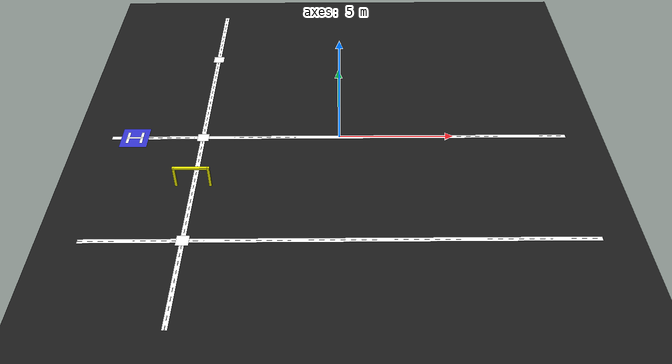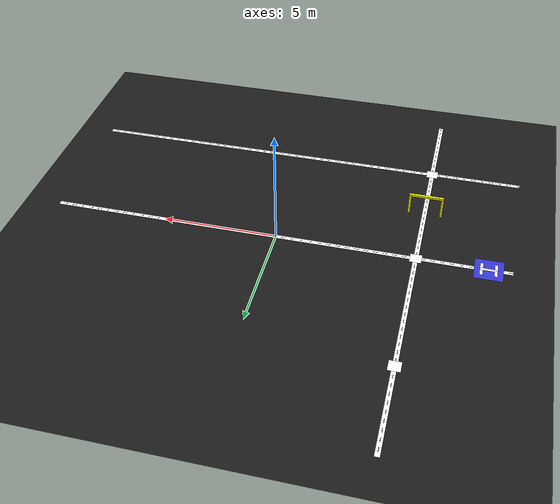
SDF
<sdf version="1.7">
 <world name="fira_arena">
  <model name="ground_plane">
   <static>true</static>
   <link name="link">
    <collision name="collision">
     <geometry><plane><normal>0 0 1</normal><size>30 30</size></plane></geometry>
    </collision>
    <visual name="visual">
     <geometry><plane><normal>0 0 1</normal><size>30 30</size></plane></geometry>
     <material>
      <ambient>0.1 0.1 0.1 1</ambient>
      <diffuse>0.1 0.1 0.1 1</diffuse>
      <specular>0.1 0.1 0.1 1</specular>
     </material>
    </visual>
   </link>
  </model>
  <model name="street_h_bottom">
   <static>true</static>
   <pose>0 -6 0.001 0 0 0</pose>
   <link name="link">
    <visual name="road">
     <geometry><box><size>20.0 0.2 0.002</size></box></geometry>
     <material><ambient>1 1 1 1</ambient><diffuse>1 1 1 1</diffuse></material>
    </visual>
    <visual name="l0">
     <pose>-9.90 0 0.001 0 0 0</pose>
     <geometry><box><size>0.2 0.02 0.001</size></box></geometry>
     <material><ambient>0 0 0 1</ambient><diffuse>0 0 0 1</diffuse></material>
    </visual>
    <visual name="l1">
     <pose>-9.50 0 0.001 0 0 0</pose>
     <geometry><box><size>0.2 0.02 0.001</size></box></geometry>
     <material><ambient>0 0 0 1</ambient><diffuse>0 0 0 1</diffuse></material>
    </visual>
    <visual name="l2">
     <pose>-9.10 0 0.001 0 0 0</pose>
     <geometry><box><size>0.2 0.02 0.001</size></box></geometry>
     <material><ambient>0 0 0 1</ambient><diffuse>0 0 0 1</diffuse></material>
    </visual>
    <visual name="l3">
     <pose>-8.70 0 0.001 0 0 0</pose>
     <geometry><box><size>0.2 0.02 0.001</size></box></geometry>
     <material><ambient>0 0 0 1</ambient><diffuse>0 0 0 1</diffuse></material>
    </visual>
    <visual name="l4">
     <pose>-8.30 0 0.001 0 0 0</pose>
     <geometry><box><size>0.2 0.02 0.001</size></box></geometry>
     <material><ambient>0 0 0 1</ambient><diffuse>0 0 0 1</diffuse></material>
    </visual>
    <visual name="l5">
     <pose>-7.90 0 0.001 0 0 0</pose>
     <geometry><box><size>0.2 0.02 0.001</size></box></geometry>
     <material><ambient>0 0 0 1</ambient><diffuse>0 0 0 1</diffuse></material>
    </visual>
    <visual name="l6">
     <pose>-7.50 0 0.001 0 0 0</pose>
     <geometry><box><size>0.2 0.02 0.001</size></box></geometry>
     <material><ambient>0 0 0 1</ambient><diffuse>0 0 0 1</diffuse></material>
    </visual>
    <visual name="l7">
     <pose>-7.10 0 0.001 0 0 0</pose>
     <geometry><box><size>0.2 0.02 0.001</size></box></geometry>
     <material><ambient>0 0 0 1</ambient><diffuse>0 0 0 1</diffuse></material>
    </visual>
    <visual name="l8">
     <pose>-6.70 0 0.001 0 0 0</pose>
     <geometry><box><size>0.2 0.02 0.001</size></box></geometry>
     <material><ambient>0 0 0 1</ambient><diffuse>0 0 0 1</diffuse></material>
    </visual>
    <visual name="l9">
     <pose>-6.30 0 0.001 0 0 0</pose>
     <geometry><box><size>0.2 0.02 0.001</size></box></geometry>
     <material><ambient>0 0 0 1</ambient><diffuse>0 0 0 1</diffuse></material>
    </visual>
    <visual name="l10">
     <pose>-5.90 0 0.001 0 0 0</pose>
     <geometry><box><size>0.2 0.02 0.001</size></box></geometry>
     <material><ambient>0 0 0 1</ambient><diffuse>0 0 0 1</diffuse></material>
    </visual>
    <visual name="l11">
     <pose>-5.50 0 0.001 0 0 0</pose>
     <geometry><box><size>0.2 0.02 0.001</size></box></geometry>
     <material><ambient>0 0 0 1</ambient><diffuse>0 0 0 1</diffuse></material>
    </visual>
    <visual name="l12">
     <pose>-5.10 0 0.001 0 0 0</pose>
     <geometry><box><size>0.2 0.02 0.001</size></box></geometry>
     <material><ambient>0 0 0 1</ambient><diffuse>0 0 0 1</diffuse></material>
    </visual>
    <visual name="l13">
     <pose>-4.70 0 0.001 0 0 0</pose>
     <geometry><box><size>0.2 0.02 0.001</size></box></geometry>
     <material><ambient>0 0 0 1</ambient><diffuse>0 0 0 1</diffuse></material>
    </visual>
    <visual name="l14">
     <pose>-4.30 0 0.001 0 0 0</pose>
     <geometry><box><size>0.2 0.02 0.001</size></box></geometry>
     <material><ambient>0 0 0 1</ambient><diffuse>0 0 0 1</diffuse></material>
    </visual>
    <visual name="l15">
     <pose>-3.90 0 0.001 0 0 0</pose>
     <geometry><box><size>0.2 0.02 0.001</size></box></geometry>
     <material><ambient>0 0 0 1</ambient><diffuse>0 0 0 1</diffuse></material>
    </visual>
    <visual name="l16">
     <pose>-3.50 0 0.001 0 0 0</pose>
     <geometry><box><size>0.2 0.02 0.001</size></box></geometry>
     <material><ambient>0 0 0 1</ambient><diffuse>0 0 0 1</diffuse></material>
    </visual>
    <visual name="l17">
     <pose>-3.10 0 0.001 0 0 0</pose>
     <geometry><box><size>0.2 0.02 0.001</size></box></geometry>
     <material><ambient>0 0 0 1</ambient><diffuse>0 0 0 1</diffuse></material>
    </visual>
    <visual name="l18">
     <pose>-2.70 0 0.001 0 0 0</pose>
     <geometry><box><size>0.2 0.02 0.001</size></box></geometry>
     <material><ambient>0 0 0 1</ambient><diffuse>0 0 0 1</diffuse></material>
    </visual>
    <visual name="l19">
     <pose>-2.30 0 0.001 0 0 0</pose>
     <geometry><box><size>0.2 0.02 0.001</size></box></geometry>
     <material><ambient>0 0 0 1</ambient><diffuse>0 0 0 1</diffuse></material>
    </visual>
    <visual name="l20">
     <pose>-1.90 0 0.001 0 0 0</pose>
     <geometry><box><size>0.2 0.02 0.001</size></box></geometry>
     <material><ambient>0 0 0 1</ambient><diffuse>0 0 0 1</diffuse></material>
    </visual>
    <visual name="l21">
     <pose>-1.50 0 0.001 0 0 0</pose>
     <geometry><box><size>0.2 0.02 0.001</size></box></geometry>
     <material><ambient>0 0 0 1</ambient><diffuse>0 0 0 1</diffuse></material>
    </visual>
    <visual name="l22">
     <pose>-1.10 0 0.001 0 0 0</pose>
     <geometry><box><size>0.2 0.02 0.001</size></box></geometry>
     <material><ambient>0 0 0 1</ambient><diffuse>0 0 0 1</diffuse></material>
    </visual>
    <visual name="l23">
     <pose>-0.70 0 0.001 0 0 0</pose>
     <geometry><box><size>0.2 0.02 0.001</size></box></geometry>
     <material><ambient>0 0 0 1</ambient><diffuse>0 0 0 1</diffuse></material>
    </visual>
    <visual name="l24">
     <pose>-0.30 0 0.001 0 0 0</pose>
     <geometry><box><size>0.2 0.02 0.001</size></box></geometry>
     <material><ambient>0 0 0 1</ambient><diffuse>0 0 0 1</diffuse></material>
    </visual>
    <visual name="l25">
     <pose>0.10 0 0.001 0 0 0</pose>
     <geometry><box><size>0.2 0.02 0.001</size></box></geometry>
     <material><ambient>0 0 0 1</ambient><diffuse>0 0 0 1</diffuse></material>
    </visual>
    <visual name="l26">
     <pose>0.50 0 0.001 0 0 0</pose>
     <geometry><box><size>0.2 0.02 0.001</size></box></geometry>
     <material><ambient>0 0 0 1</ambient><diffuse>0 0 0 1</diffuse></material>
    </visual>
    <visual name="l27">
     <pose>0.90 0 0.001 0 0 0</pose>
     <geometry><box><size>0.2 0.02 0.001</size></box></geometry>
     <material><ambient>0 0 0 1</ambient><diffuse>0 0 0 1</diffuse></material>
    </visual>
    <visual name="l28">
     <pose>1.30 0 0.001 0 0 0</pose>
     <geometry><box><size>0.2 0.02 0.001</size></box></geometry>
     <material><ambient>0 0 0 1</ambient><diffuse>0 0 0 1</diffuse></material>
    </visual>
    <visual name="l29">
     <pose>1.70 0 0.001 0 0 0</pose>
     <geometry><box><size>0.2 0.02 0.001</size></box></geometry>
     <material><ambient>0 0 0 1</ambient><diffuse>0 0 0 1</diffuse></material>
    </visual>
    <visual name="l30">
     <pose>2.10 0 0.001 0 0 0</pose>
     <geometry><box><size>0.2 0.02 0.001</size></box></geometry>
     <material><ambient>0 0 0 1</ambient><diffuse>0 0 0 1</diffuse></material>
    </visual>
    <visual name="l31">
     <pose>2.50 0 0.001 0 0 0</pose>
     <geometry><box><size>0.2 0.02 0.001</size></box></geometry>
     <material><ambient>0 0 0 1</ambient><diffuse>0 0 0 1</diffuse></material>
    </visual>
    <visual name="l32">
     <pose>2.90 0 0.001 0 0 0</pose>
     <geometry><box><size>0.2 0.02 0.001</size></box></geometry>
     <material><ambient>0 0 0 1</ambient><diffuse>0 0 0 1</diffuse></material>
    </visual>
    <visual name="l33">
     <pose>3.30 0 0.001 0 0 0</pose>
     <geometry><box><size>0.2 0.02 0.001</size></box></geometry>
     <material><ambient>0 0 0 1</ambient><diffuse>0 0 0 1</diffuse></material>
    </visual>
    <visual name="l34">
     <pose>3.70 0 0.001 0 0 0</pose>
     <geometry><box><size>0.2 0.02 0.001</size></box></geometry>
     <material><ambient>0 0 0 1</ambient><diffuse>0 0 0 1</diffuse></material>
    </visual>
    <visual name="l35">
     <pose>4.10 0 0.001 0 0 0</pose>
     <geometry><box><size>0.2 0.02 0.001</size></box></geometry>
     <material><ambient>0 0 0 1</ambient><diffuse>0 0 0 1</diffuse></material>
    </visual>
    <visual name="l36">
     <pose>4.50 0 0.001 0 0 0</pose>
     <geometry><box><size>0.2 0.02 0.001</size></box></geometry>
     <material><ambient>0 0 0 1</ambient><diffuse>0 0 0 1</diffuse></material>
    </visual>
    <visual name="l37">
     <pose>4.90 0 0.001 0 0 0</pose>
     <geometry><box><size>0.2 0.02 0.001</size></box></geometry>
     <material><ambient>0 0 0 1</ambient><diffuse>0 0 0 1</diffuse></material>
    </visual>
    <visual name="l38">
     <pose>5.30 0 0.001 0 0 0</pose>
     <geometry><box><size>0.2 0.02 0.001</size></box></geometry>
     <material><ambient>0 0 0 1</ambient><diffuse>0 0 0 1</diffuse></material>
    </visual>
    <visual name="l39">
     <pose>5.70 0 0.001 0 0 0</pose>
     <geometry><box><size>0.2 0.02 0.001</size></box></geometry>
     <material><ambient>0 0 0 1</ambient><diffuse>0 0 0 1</diffuse></material>
    </visual>
    <visual name="l40">
     <pose>6.10 0 0.001 0 0 0</pose>
     <geometry><box><size>0.2 0.02 0.001</size></box></geometry>
     <material><ambient>0 0 0 1</ambient><diffuse>0 0 0 1</diffuse></material>
    </visual>
    <visual name="l41">
     <pose>6.50 0 0.001 0 0 0</pose>
     <geometry><box><size>0.2 0.02 0.001</size></box></geometry>
     <material><ambient>0 0 0 1</ambient><diffuse>0 0 0 1</diffuse></material>
    </visual>
    <visual name="l42">
     <pose>6.90 0 0.001 0 0 0</pose>
     <geometry><box><size>0.2 0.02 0.001</size></box></geometry>
     <material><ambient>0 0 0 1</ambient><diffuse>0 0 0 1</diffuse></material>
    </visual>
    <visual name="l43">
     <pose>7.30 0 0.001 0 0 0</pose>
     <geometry><box><size>0.2 0.02 0.001</size></box></geometry>
     <material><ambient>0 0 0 1</ambient><diffuse>0 0 0 1</diffuse></material>
    </visual>
    <visual name="l44">
     <pose>7.70 0 0.001 0 0 0</pose>
     <geometry><box><size>0.2 0.02 0.001</size></box></geometry>
     <material><ambient>0 0 0 1</ambient><diffuse>0 0 0 1</diffuse></material>
    </visual>
    <visual name="l45">
     <pose>8.10 0 0.001 0 0 0</pose>
     <geometry><box><size>0.2 0.02 0.001</size></box></geometry>
     <material><ambient>0 0 0 1</ambient><diffuse>0 0 0 1</diffuse></material>
    </visual>
    <visual name="l46">
     <pose>8.50 0 0.001 0 0 0</pose>
     <geometry><box><size>0.2 0.02 0.001</size></box></geometry>
     <material><ambient>0 0 0 1</ambient><diffuse>0 0 0 1</diffuse></material>
    </visual>
    <visual name="l47">
     <pose>8.90 0 0.001 0 0 0</pose>
     <geometry><box><size>0.2 0.02 0.001</size></box></geometry>
     <material><ambient>0 0 0 1</ambient><diffuse>0 0 0 1</diffuse></material>
    </visual>
    <visual name="l48">
     <pose>9.30 0 0.001 0 0 0</pose>
     <geometry><box><size>0.2 0.02 0.001</size></box></geometry>
     <material><ambient>0 0 0 1</ambient><diffuse>0 0 0 1</diffuse></material>
    </visual>
    <visual name="l49">
     <pose>9.70 0 0.001 0 0 0</pose>
     <geometry><box><size>0.2 0.02 0.001</size></box></geometry>
     <material><ambient>0 0 0 1</ambient><diffuse>0 0 0 1</diffuse></material>
    </visual>
   </link>
  </model>
  <model name="street_h_middle">
   <static>true</static>
   <pose>0 0 0.001 0 0 0</pose>
   <link name="link">
    <visual name="road">
     <geometry><box><size>20.0 0.2 0.002</size></box></geometry>
     <material><ambient>1 1 1 1</ambient><diffuse>1 1 1 1</diffuse></material>
    </visual>
    <visual name="l0">
     <pose>-9.90 0 0.001 0 0 0</pose>
     <geometry><box><size>0.2 0.02 0.001</size></box></geometry>
     <material><ambient>0 0 0 1</ambient><diffuse>0 0 0 1</diffuse></material>
    </visual>
    <visual name="l1">
     <pose>-9.50 0 0.001 0 0 0</pose>
     <geometry><box><size>0.2 0.02 0.001</size></box></geometry>
     <material><ambient>0 0 0 1</ambient><diffuse>0 0 0 1</diffuse></material>
    </visual>
    <visual name="l2">
     <pose>-9.10 0 0.001 0 0 0</pose>
     <geometry><box><size>0.2 0.02 0.001</size></box></geometry>
     <material><ambient>0 0 0 1</ambient><diffuse>0 0 0 1</diffuse></material>
    </visual>
    <visual name="l3">
     <pose>-8.70 0 0.001 0 0 0</pose>
     <geometry><box><size>0.2 0.02 0.001</size></box></geometry>
     <material><ambient>0 0 0 1</ambient><diffuse>0 0 0 1</diffuse></material>
    </visual>
    <visual name="l4">
     <pose>-8.30 0 0.001 0 0 0</pose>
     <geometry><box><size>0.2 0.02 0.001</size></box></geometry>
     <material><ambient>0 0 0 1</ambient><diffuse>0 0 0 1</diffuse></material>
    </visual>
    <visual name="l5">
     <pose>-7.90 0 0.001 0 0 0</pose>
     <geometry><box><size>0.2 0.02 0.001</size></box></geometry>
     <material><ambient>0 0 0 1</ambient><diffuse>0 0 0 1</diffuse></material>
    </visual>
    <visual name="l6">
     <pose>-7.50 0 0.001 0 0 0</pose>
     <geometry><box><size>0.2 0.02 0.001</size></box></geometry>
     <material><ambient>0 0 0 1</ambient><diffuse>0 0 0 1</diffuse></material>
    </visual>
    <visual name="l7">
     <pose>-7.10 0 0.001 0 0 0</pose>
     <geometry><box><size>0.2 0.02 0.001</size></box></geometry>
     <material><ambient>0 0 0 1</ambient><diffuse>0 0 0 1</diffuse></material>
    </visual>
    <visual name="l8">
     <pose>-6.70 0 0.001 0 0 0</pose>
     <geometry><box><size>0.2 0.02 0.001</size></box></geometry>
     <material><ambient>0 0 0 1</ambient><diffuse>0 0 0 1</diffuse></material>
    </visual>
    <visual name="l9">
     <pose>-6.30 0 0.001 0 0 0</pose>
     <geometry><box><size>0.2 0.02 0.001</size></box></geometry>
     <material><ambient>0 0 0 1</ambient><diffuse>0 0 0 1</diffuse></material>
    </visual>
    <visual name="l10">
     <pose>-5.90 0 0.001 0 0 0</pose>
     <geometry><box><size>0.2 0.02 0.001</size></box></geometry>
     <material><ambient>0 0 0 1</ambient><diffuse>0 0 0 1</diffuse></material>
    </visual>
    <visual name="l11">
     <pose>-5.50 0 0.001 0 0 0</pose>
     <geometry><box><size>0.2 0.02 0.001</size></box></geometry>
     <material><ambient>0 0 0 1</ambient><diffuse>0 0 0 1</diffuse></material>
    </visual>
    <visual name="l12">
     <pose>-5.10 0 0.001 0 0 0</pose>
     <geometry><box><size>0.2 0.02 0.001</size></box></geometry>
     <material><ambient>0 0 0 1</ambient><diffuse>0 0 0 1</diffuse></material>
    </visual>
    <visual name="l13">
     <pose>-4.70 0 0.001 0 0 0</pose>
     <geometry><box><size>0.2 0.02 0.001</size></box></geometry>
     <material><ambient>0 0 0 1</ambient><diffuse>0 0 0 1</diffuse></material>
    </visual>
    <visual name="l14">
     <pose>-4.30 0 0.001 0 0 0</pose>
     <geometry><box><size>0.2 0.02 0.001</size></box></geometry>
     <material><ambient>0 0 0 1</ambient><diffuse>0 0 0 1</diffuse></material>
    </visual>
    <visual name="l15">
     <pose>-3.90 0 0.001 0 0 0</pose>
     <geometry><box><size>0.2 0.02 0.001</size></box></geometry>
     <material><ambient>0 0 0 1</ambient><diffuse>0 0 0 1</diffuse></material>
    </visual>
    <visual name="l16">
     <pose>-3.50 0 0.001 0 0 0</pose>
     <geometry><box><size>0.2 0.02 0.001</size></box></geometry>
     <material><ambient>0 0 0 1</ambient><diffuse>0 0 0 1</diffuse></material>
    </visual>
    <visual name="l17">
     <pose>-3.10 0 0.001 0 0 0</pose>
     <geometry><box><size>0.2 0.02 0.001</size></box></geometry>
     <material><ambient>0 0 0 1</ambient><diffuse>0 0 0 1</diffuse></material>
    </visual>
    <visual name="l18">
     <pose>-2.70 0 0.001 0 0 0</pose>
     <geometry><box><size>0.2 0.02 0.001</size></box></geometry>
     <material><ambient>0 0 0 1</ambient><diffuse>0 0 0 1</diffuse></material>
    </visual>
    <visual name="l19">
     <pose>-2.30 0 0.001 0 0 0</pose>
     <geometry><box><size>0.2 0.02 0.001</size></box></geometry>
     <material><ambient>0 0 0 1</ambient><diffuse>0 0 0 1</diffuse></material>
    </visual>
    <visual name="l20">
     <pose>-1.90 0 0.001 0 0 0</pose>
     <geometry><box><size>0.2 0.02 0.001</size></box></geometry>
     <material><ambient>0 0 0 1</ambient><diffuse>0 0 0 1</diffuse></material>
    </visual>
    <visual name="l21">
     <pose>-1.50 0 0.001 0 0 0</pose>
     <geometry><box><size>0.2 0.02 0.001</size></box></geometry>
     <material><ambient>0 0 0 1</ambient><diffuse>0 0 0 1</diffuse></material>
    </visual>
    <visual name="l22">
     <pose>-1.10 0 0.001 0 0 0</pose>
     <geometry><box><size>0.2 0.02 0.001</size></box></geometry>
     <material><ambient>0 0 0 1</ambient><diffuse>0 0 0 1</diffuse></material>
    </visual>
    <visual name="l23">
     <pose>-0.70 0 0.001 0 0 0</pose>
     <geometry><box><size>0.2 0.02 0.001</size></box></geometry>
     <material><ambient>0 0 0 1</ambient><diffuse>0 0 0 1</diffuse></material>
    </visual>
    <visual name="l24">
     <pose>-0.30 0 0.001 0 0 0</pose>
     <geometry><box><size>0.2 0.02 0.001</size></box></geometry>
     <material><ambient>0 0 0 1</ambient><diffuse>0 0 0 1</diffuse></material>
    </visual>
    <visual name="l25">
     <pose>0.10 0 0.001 0 0 0</pose>
     <geometry><box><size>0.2 0.02 0.001</size></box></geometry>
     <material><ambient>0 0 0 1</ambient><diffuse>0 0 0 1</diffuse></material>
    </visual>
    <visual name="l26">
     <pose>0.50 0 0.001 0 0 0</pose>
     <geometry><box><size>0.2 0.02 0.001</size></box></geometry>
     <material><ambient>0 0 0 1</ambient><diffuse>0 0 0 1</diffuse></material>
    </visual>
    <visual name="l27">
     <pose>0.90 0 0.001 0 0 0</pose>
     <geometry><box><size>0.2 0.02 0.001</size></box></geometry>
     <material><ambient>0 0 0 1</ambient><diffuse>0 0 0 1</diffuse></material>
    </visual>
    <visual name="l28">
     <pose>1.30 0 0.001 0 0 0</pose>
     <geometry><box><size>0.2 0.02 0.001</size></box></geometry>
     <material><ambient>0 0 0 1</ambient><diffuse>0 0 0 1</diffuse></material>
    </visual>
    <visual name="l29">
     <pose>1.70 0 0.001 0 0 0</pose>
     <geometry><box><size>0.2 0.02 0.001</size></box></geometry>
     <material><ambient>0 0 0 1</ambient><diffuse>0 0 0 1</diffuse></material>
    </visual>
    <visual name="l30">
     <pose>2.10 0 0.001 0 0 0</pose>
     <geometry><box><size>0.2 0.02 0.001</size></box></geometry>
     <material><ambient>0 0 0 1</ambient><diffuse>0 0 0 1</diffuse></material>
    </visual>
    <visual name="l31">
     <pose>2.50 0 0.001 0 0 0</pose>
     <geometry><box><size>0.2 0.02 0.001</size></box></geometry>
     <material><ambient>0 0 0 1</ambient><diffuse>0 0 0 1</diffuse></material>
    </visual>
    <visual name="l32">
     <pose>2.90 0 0.001 0 0 0</pose>
     <geometry><box><size>0.2 0.02 0.001</size></box></geometry>
     <material><ambient>0 0 0 1</ambient><diffuse>0 0 0 1</diffuse></material>
    </visual>
    <visual name="l33">
     <pose>3.30 0 0.001 0 0 0</pose>
     <geometry><box><size>0.2 0.02 0.001</size></box></geometry>
     <material><ambient>0 0 0 1</ambient><diffuse>0 0 0 1</diffuse></material>
    </visual>
    <visual name="l34">
     <pose>3.70 0 0.001 0 0 0</pose>
     <geometry><box><size>0.2 0.02 0.001</size></box></geometry>
     <material><ambient>0 0 0 1</ambient><diffuse>0 0 0 1</diffuse></material>
    </visual>
    <visual name="l35">
     <pose>4.10 0 0.001 0 0 0</pose>
     <geometry><box><size>0.2 0.02 0.001</size></box></geometry>
     <material><ambient>0 0 0 1</ambient><diffuse>0 0 0 1</diffuse></material>
    </visual>
    <visual name="l36">
     <pose>4.50 0 0.001 0 0 0</pose>
     <geometry><box><size>0.2 0.02 0.001</size></box></geometry>
     <material><ambient>0 0 0 1</ambient><diffuse>0 0 0 1</diffuse></material>
    </visual>
    <visual name="l37">
     <pose>4.90 0 0.001 0 0 0</pose>
     <geometry><box><size>0.2 0.02 0.001</size></box></geometry>
     <material><ambient>0 0 0 1</ambient><diffuse>0 0 0 1</diffuse></material>
    </visual>
    <visual name="l38">
     <pose>5.30 0 0.001 0 0 0</pose>
     <geometry><box><size>0.2 0.02 0.001</size></box></geometry>
     <material><ambient>0 0 0 1</ambient><diffuse>0 0 0 1</diffuse></material>
    </visual>
    <visual name="l39">
     <pose>5.70 0 0.001 0 0 0</pose>
     <geometry><box><size>0.2 0.02 0.001</size></box></geometry>
     <material><ambient>0 0 0 1</ambient><diffuse>0 0 0 1</diffuse></material>
    </visual>
    <visual name="l40">
     <pose>6.10 0 0.001 0 0 0</pose>
     <geometry><box><size>0.2 0.02 0.001</size></box></geometry>
     <material><ambient>0 0 0 1</ambient><diffuse>0 0 0 1</diffuse></material>
    </visual>
    <visual name="l41">
     <pose>6.50 0 0.001 0 0 0</pose>
     <geometry><box><size>0.2 0.02 0.001</size></box></geometry>
     <material><ambient>0 0 0 1</ambient><diffuse>0 0 0 1</diffuse></material>
    </visual>
    <visual name="l42">
     <pose>6.90 0 0.001 0 0 0</pose>
     <geometry><box><size>0.2 0.02 0.001</size></box></geometry>
     <material><ambient>0 0 0 1</ambient><diffuse>0 0 0 1</diffuse></material>
    </visual>
    <visual name="l43">
     <pose>7.30 0 0.001 0 0 0</pose>
     <geometry><box><size>0.2 0.02 0.001</size></box></geometry>
     <material><ambient>0 0 0 1</ambient><diffuse>0 0 0 1</diffuse></material>
    </visual>
    <visual name="l44">
     <pose>7.70 0 0.001 0 0 0</pose>
     <geometry><box><size>0.2 0.02 0.001</size></box></geometry>
     <material><ambient>0 0 0 1</ambient><diffuse>0 0 0 1</diffuse></material>
    </visual>
    <visual name="l45">
     <pose>8.10 0 0.001 0 0 0</pose>
     <geometry><box><size>0.2 0.02 0.001</size></box></geometry>
     <material><ambient>0 0 0 1</ambient><diffuse>0 0 0 1</diffuse></material>
    </visual>
    <visual name="l46">
     <pose>8.50 0 0.001 0 0 0</pose>
     <geometry><box><size>0.2 0.02 0.001</size></box></geometry>
     <material><ambient>0 0 0 1</ambient><diffuse>0 0 0 1</diffuse></material>
    </visual>
    <visual name="l47">
     <pose>8.90 0 0.001 0 0 0</pose>
     <geometry><box><size>0.2 0.02 0.001</size></box></geometry>
     <material><ambient>0 0 0 1</ambient><diffuse>0 0 0 1</diffuse></material>
    </visual>
    <visual name="l48">
     <pose>9.30 0 0.001 0 0 0</pose>
     <geometry><box><size>0.2 0.02 0.001</size></box></geometry>
     <material><ambient>0 0 0 1</ambient><diffuse>0 0 0 1</diffuse></material>
    </visual>
    <visual name="l49">
     <pose>9.70 0 0.001 0 0 0</pose>
     <geometry><box><size>0.2 0.02 0.001</size></box></geometry>
     <material><ambient>0 0 0 1</ambient><diffuse>0 0 0 1</diffuse></material>
    </visual>
   </link>
  </model>
  <model name="street_v_left">
   <static>true</static>
   <pose>-6 0 0.001 0 0 0</pose>
   <link name="link">
    <visual name="road">
     <geometry><box><size>0.2 20.0 0.002</size></box></geometry>
     <material><ambient>1 1 1 1</ambient><diffuse>1 1 1 1</diffuse></material>
    </visual>
    <visual name="l0">
     <pose>0 -9.90 0.001 0 0 0</pose>
     <geometry><box><size>0.02 0.2 0.001</size></box></geometry>
     <material><ambient>0 0 0 1</ambient><diffuse>0 0 0 1</diffuse></material>
    </visual>
    <visual name="l1">
     <pose>0 -9.50 0.001 0 0 0</pose>
     <geometry><box><size>0.02 0.2 0.001</size></box></geometry>
     <material><ambient>0 0 0 1</ambient><diffuse>0 0 0 1</diffuse></material>
    </visual>
    <visual name="l2">
     <pose>0 -9.10 0.001 0 0 0</pose>
     <geometry><box><size>0.02 0.2 0.001</size></box></geometry>
     <material><ambient>0 0 0 1</ambient><diffuse>0 0 0 1</diffuse></material>
    </visual>
    <visual name="l3">
     <pose>0 -8.70 0.001 0 0 0</pose>
     <geometry><box><size>0.02 0.2 0.001</size></box></geometry>
     <material><ambient>0 0 0 1</ambient><diffuse>0 0 0 1</diffuse></material>
    </visual>
    <visual name="l4">
     <pose>0 -8.30 0.001 0 0 0</pose>
     <geometry><box><size>0.02 0.2 0.001</size></box></geometry>
     <material><ambient>0 0 0 1</ambient><diffuse>0 0 0 1</diffuse></material>
    </visual>
    <visual name="l5">
     <pose>0 -7.90 0.001 0 0 0</pose>
     <geometry><box><size>0.02 0.2 0.001</size></box></geometry>
     <material><ambient>0 0 0 1</ambient><diffuse>0 0 0 1</diffuse></material>
    </visual>
    <visual name="l6">
     <pose>0 -7.50 0.001 0 0 0</pose>
     <geometry><box><size>0.02 0.2 0.001</size></box></geometry>
     <material><ambient>0 0 0 1</ambient><diffuse>0 0 0 1</diffuse></material>
    </visual>
    <visual name="l7">
     <pose>0 -7.10 0.001 0 0 0</pose>
     <geometry><box><size>0.02 0.2 0.001</size></box></geometry>
     <material><ambient>0 0 0 1</ambient><diffuse>0 0 0 1</diffuse></material>
    </visual>
    <visual name="l8">
     <pose>0 -6.70 0.001 0 0 0</pose>
     <geometry><box><size>0.02 0.2 0.001</size></box></geometry>
     <material><ambient>0 0 0 1</ambient><diffuse>0 0 0 1</diffuse></material>
    </visual>
    <visual name="l9">
     <pose>0 -6.30 0.001 0 0 0</pose>
     <geometry><box><size>0.02 0.2 0.001</size></box></geometry>
     <material><ambient>0 0 0 1</ambient><diffuse>0 0 0 1</diffuse></material>
    </visual>
    <visual name="l10">
     <pose>0 -5.90 0.001 0 0 0</pose>
     <geometry><box><size>0.02 0.2 0.001</size></box></geometry>
     <material><ambient>0 0 0 1</ambient><diffuse>0 0 0 1</diffuse></material>
    </visual>
    <visual name="l11">
     <pose>0 -5.50 0.001 0 0 0</pose>
     <geometry><box><size>0.02 0.2 0.001</size></box></geometry>
     <material><ambient>0 0 0 1</ambient><diffuse>0 0 0 1</diffuse></material>
    </visual>
    <visual name="l12">
     <pose>0 -5.10 0.001 0 0 0</pose>
     <geometry><box><size>0.02 0.2 0.001</size></box></geometry>
     <material><ambient>0 0 0 1</ambient><diffuse>0 0 0 1</diffuse></material>
    </visual>
    <visual name="l13">
     <pose>0 -4.70 0.001 0 0 0</pose>
     <geometry><box><size>0.02 0.2 0.001</size></box></geometry>
     <material><ambient>0 0 0 1</ambient><diffuse>0 0 0 1</diffuse></material>
    </visual>
    <visual name="l14">
     <pose>0 -4.30 0.001 0 0 0</pose>
     <geometry><box><size>0.02 0.2 0.001</size></box></geometry>
     <material><ambient>0 0 0 1</ambient><diffuse>0 0 0 1</diffuse></material>
    </visual>
    <visual name="l15">
     <pose>0 -3.90 0.001 0 0 0</pose>
     <geometry><box><size>0.02 0.2 0.001</size></box></geometry>
     <material><ambient>0 0 0 1</ambient><diffuse>0 0 0 1</diffuse></material>
    </visual>
    <visual name="l16">
     <pose>0 -3.50 0.001 0 0 0</pose>
     <geometry><box><size>0.02 0.2 0.001</size></box></geometry>
     <material><ambient>0 0 0 1</ambient><diffuse>0 0 0 1</diffuse></material>
    </visual>
    <visual name="l17">
     <pose>0 -3.10 0.001 0 0 0</pose>
     <geometry><box><size>0.02 0.2 0.001</size></box></geometry>
     <material><ambient>0 0 0 1</ambient><diffuse>0 0 0 1</diffuse></material>
    </visual>
    <visual name="l18">
     <pose>0 -2.70 0.001 0 0 0</pose>
     <geometry><box><size>0.02 0.2 0.001</size></box></geometry>
     <material><ambient>0 0 0 1</ambient><diffuse>0 0 0 1</diffuse></material>
    </visual>
    <visual name="l19">
     <pose>0 -2.30 0.001 0 0 0</pose>
     <geometry><box><size>0.02 0.2 0.001</size></box></geometry>
     <material><ambient>0 0 0 1</ambient><diffuse>0 0 0 1</diffuse></material>
    </visual>
    <visual name="l20">
     <pose>0 -1.90 0.001 0 0 0</pose>
     <geometry><box><size>0.02 0.2 0.001</size></box></geometry>
     <material><ambient>0 0 0 1</ambient><diffuse>0 0 0 1</diffuse></material>
    </visual>
    <visual name="l21">
     <pose>0 -1.50 0.001 0 0 0</pose>
     <geometry><box><size>0.02 0.2 0.001</size></box></geometry>
     <material><ambient>0 0 0 1</ambient><diffuse>0 0 0 1</diffuse></material>
    </visual>
    <visual name="l22">
     <pose>0 -1.10 0.001 0 0 0</pose>
     <geometry><box><size>0.02 0.2 0.001</size></box></geometry>
     <material><ambient>0 0 0 1</ambient><diffuse>0 0 0 1</diffuse></material>
    </visual>
    <visual name="l23">
     <pose>0 -0.70 0.001 0 0 0</pose>
     <geometry><box><size>0.02 0.2 0.001</size></box></geometry>
     <material><ambient>0 0 0 1</ambient><diffuse>0 0 0 1</diffuse></material>
    </visual>
    <visual name="l24">
     <pose>0 -0.30 0.001 0 0 0</pose>
     <geometry><box><size>0.02 0.2 0.001</size></box></geometry>
     <material><ambient>0 0 0 1</ambient><diffuse>0 0 0 1</diffuse></material>
    </visual>
    <visual name="l25">
     <pose>0 0.10 0.001 0 0 0</pose>
     <geometry><box><size>0.02 0.2 0.001</size></box></geometry>
     <material><ambient>0 0 0 1</ambient><diffuse>0 0 0 1</diffuse></material>
    </visual>
    <visual name="l26">
     <pose>0 0.50 0.001 0 0 0</pose>
     <geometry><box><size>0.02 0.2 0.001</size></box></geometry>
     <material><ambient>0 0 0 1</ambient><diffuse>0 0 0 1</diffuse></material>
    </visual>
    <visual name="l27">
     <pose>0 0.90 0.001 0 0 0</pose>
     <geometry><box><size>0.02 0.2 0.001</size></box></geometry>
     <material><ambient>0 0 0 1</ambient><diffuse>0 0 0 1</diffuse></material>
    </visual>
    <visual name="l28">
     <pose>0 1.30 0.001 0 0 0</pose>
     <geometry><box><size>0.02 0.2 0.001</size></box></geometry>
     <material><ambient>0 0 0 1</ambient><diffuse>0 0 0 1</diffuse></material>
    </visual>
    <visual name="l29">
     <pose>0 1.70 0.001 0 0 0</pose>
     <geometry><box><size>0.02 0.2 0.001</size></box></geometry>
     <material><ambient>0 0 0 1</ambient><diffuse>0 0 0 1</diffuse></material>
    </visual>
    <visual name="l30">
     <pose>0 2.10 0.001 0 0 0</pose>
     <geometry><box><size>0.02 0.2 0.001</size></box></geometry>
     <material><ambient>0 0 0 1</ambient><diffuse>0 0 0 1</diffuse></material>
    </visual>
    <visual name="l31">
     <pose>0 2.50 0.001 0 0 0</pose>
     <geometry><box><size>0.02 0.2 0.001</size></box></geometry>
     <material><ambient>0 0 0 1</ambient><diffuse>0 0 0 1</diffuse></material>
    </visual>
    <visual name="l32">
     <pose>0 2.90 0.001 0 0 0</pose>
     <geometry><box><size>0.02 0.2 0.001</size></box></geometry>
     <material><ambient>0 0 0 1</ambient><diffuse>0 0 0 1</diffuse></material>
    </visual>
    <visual name="l33">
     <pose>0 3.30 0.001 0 0 0</pose>
     <geometry><box><size>0.02 0.2 0.001</size></box></geometry>
     <material><ambient>0 0 0 1</ambient><diffuse>0 0 0 1</diffuse></material>
    </visual>
    <visual name="l34">
     <pose>0 3.70 0.001 0 0 0</pose>
     <geometry><box><size>0.02 0.2 0.001</size></box></geometry>
     <material><ambient>0 0 0 1</ambient><diffuse>0 0 0 1</diffuse></material>
    </visual>
    <visual name="l35">
     <pose>0 4.10 0.001 0 0 0</pose>
     <geometry><box><size>0.02 0.2 0.001</size></box></geometry>
     <material><ambient>0 0 0 1</ambient><diffuse>0 0 0 1</diffuse></material>
    </visual>
    <visual name="l36">
     <pose>0 4.50 0.001 0 0 0</pose>
     <geometry><box><size>0.02 0.2 0.001</size></box></geometry>
     <material><ambient>0 0 0 1</ambient><diffuse>0 0 0 1</diffuse></material>
    </visual>
    <visual name="l37">
     <pose>0 4.90 0.001 0 0 0</pose>
     <geometry><box><size>0.02 0.2 0.001</size></box></geometry>
     <material><ambient>0 0 0 1</ambient><diffuse>0 0 0 1</diffuse></material>
    </visual>
    <visual name="l38">
     <pose>0 5.30 0.001 0 0 0</pose>
     <geometry><box><size>0.02 0.2 0.001</size></box></geometry>
     <material><ambient>0 0 0 1</ambient><diffuse>0 0 0 1</diffuse></material>
    </visual>
    <visual name="l39">
     <pose>0 5.70 0.001 0 0 0</pose>
     <geometry><box><size>0.02 0.2 0.001</size></box></geometry>
     <material><ambient>0 0 0 1</ambient><diffuse>0 0 0 1</diffuse></material>
    </visual>
    <visual name="l40">
     <pose>0 6.10 0.001 0 0 0</pose>
     <geometry><box><size>0.02 0.2 0.001</size></box></geometry>
     <material><ambient>0 0 0 1</ambient><diffuse>0 0 0 1</diffuse></material>
    </visual>
    <visual name="l41">
     <pose>0 6.50 0.001 0 0 0</pose>
     <geometry><box><size>0.02 0.2 0.001</size></box></geometry>
     <material><ambient>0 0 0 1</ambient><diffuse>0 0 0 1</diffuse></material>
    </visual>
    <visual name="l42">
     <pose>0 6.90 0.001 0 0 0</pose>
     <geometry><box><size>0.02 0.2 0.001</size></box></geometry>
     <material><ambient>0 0 0 1</ambient><diffuse>0 0 0 1</diffuse></material>
    </visual>
    <visual name="l43">
     <pose>0 7.30 0.001 0 0 0</pose>
     <geometry><box><size>0.02 0.2 0.001</size></box></geometry>
     <material><ambient>0 0 0 1</ambient><diffuse>0 0 0 1</diffuse></material>
    </visual>
    <visual name="l44">
     <pose>0 7.70 0.001 0 0 0</pose>
     <geometry><box><size>0.02 0.2 0.001</size></box></geometry>
     <material><ambient>0 0 0 1</ambient><diffuse>0 0 0 1</diffuse></material>
    </visual>
    <visual name="l45">
     <pose>0 8.10 0.001 0 0 0</pose>
     <geometry><box><size>0.02 0.2 0.001</size></box></geometry>
     <material><ambient>0 0 0 1</ambient><diffuse>0 0 0 1</diffuse></material>
    </visual>
    <visual name="l46">
     <pose>0 8.50 0.001 0 0 0</pose>
     <geometry><box><size>0.02 0.2 0.001</size></box></geometry>
     <material><ambient>0 0 0 1</ambient><diffuse>0 0 0 1</diffuse></material>
    </visual>
    <visual name="l47">
     <pose>0 8.90 0.001 0 0 0</pose>
     <geometry><box><size>0.02 0.2 0.001</size></box></geometry>
     <material><ambient>0 0 0 1</ambient><diffuse>0 0 0 1</diffuse></material>
    </visual>
    <visual name="l48">
     <pose>0 9.30 0.001 0 0 0</pose>
     <geometry><box><size>0.02 0.2 0.001</size></box></geometry>
     <material><ambient>0 0 0 1</ambient><diffuse>0 0 0 1</diffuse></material>
    </visual>
    <visual name="l49">
     <pose>0 9.70 0.001 0 0 0</pose>
     <geometry><box><size>0.02 0.2 0.001</size></box></geometry>
     <material><ambient>0 0 0 1</ambient><diffuse>0 0 0 1</diffuse></material>
    </visual>
   </link>
  </model>
  <model name="landing_pad_t4">
   <static>true</static>
   <pose>-9 0 0.005 0 0 0</pose>
   <link name="link">
    <visual name="pad">
     <geometry><box><size>1.2 1.2 0.002</size></box></geometry>
     <material><ambient>0.1 0.1 0.7 1</ambient><diffuse>0.2 0.2 0.8 1</diffuse></material>
    </visual>
    <visual name="h_left">
     <pose>-0.3 0 0.002 0 0 0</pose>
     <geometry><box><size>0.12 0.7 0.001</size></box></geometry>
     <material><ambient>1 1 1 1</ambient><diffuse>1 1 1 1</diffuse></material>
    </visual>
    <visual name="h_right">
     <pose>0.3 0 0.002 0 0 0</pose>
     <geometry><box><size>0.12 0.7 0.001</size></box></geometry>
     <material><ambient>1 1 1 1</ambient><diffuse>1 1 1 1</diffuse></material>
    </visual>
    <visual name="h_mid">
     <pose>0 0 0.002 0 0 0</pose>
     <geometry><box><size>0.7 0.12 0.001</size></box></geometry>
     <material><ambient>1 1 1 1</ambient><diffuse>1 1 1 1</diffuse></material>
    </visual>
    <collision name="col"><geometry><box><size>1.2 1.2 0.01</size></box></geometry></collision>
   </link>
  </model>
  <model name="qr_sw">
   <static>true</static>
   <pose>-6 -6 0.005 0 0 0</pose>
   <link name="link">
    <visual name="qr_surface">
     <geometry><box><size>0.5 0.5 0.002</size></box></geometry>
     <material>
      <ambient>1 1 1 1</ambient>
      <diffuse>1 1 1 1</diffuse>
      <pbr><metal><albedo_map>model://qr_marker/textures/qr_sw.png</albedo_map></metal></pbr>
     </material>
    </visual>
   </link>
  </model>
  <model name="qr_w">
   <static>true</static>
   <pose>-6 0 0.005 0 0 0</pose>
   <link name="link">
    <visual name="qr_surface">
     <geometry><box><size>0.5 0.5 0.002</size></box></geometry>
     <material>
      <ambient>1 1 1 1</ambient>
      <diffuse>1 1 1 1</diffuse>
      <pbr><metal><albedo_map>model://qr_marker/textures/qr_w.png</albedo_map></metal></pbr>
     </material>
    </visual>
   </link>
  </model>
  <model name="qr_nw">
   <static>true</static>
   <pose>-6 6 0.005 0 0 0</pose>
   <link name="link">
    <visual name="qr_surface">
     <geometry><box><size>0.5 0.5 0.002</size></box></geometry>
     <material>
      <ambient>1 1 1 1</ambient>
      <diffuse>1 1 1 1</diffuse>
      <pbr><metal><albedo_map>model://qr_marker/textures/qr_nw.png</albedo_map></metal></pbr>
     </material>
    </visual>
   </link>
  </model>
  <model name="gate_yellow_1">
   <static>true</static>
   <pose>-6 -3 0.5 0 0 0</pose>
   <link name="link">
    <visual name="left">
     <pose>-0.7 0 0 0 0 0</pose>
     <geometry><box><size>0.1 0.1 1</size></box></geometry>
     <material><ambient>0.9 0.9 0 1</ambient><diffuse>1 1 0 1</diffuse></material>
    </visual>
    <visual name="right">
     <pose>0.7 0 0 0 0 0</pose>
     <geometry><box><size>0.1 0.1 1</size></box></geometry>
     <material><ambient>0.9 0.9 0 1</ambient><diffuse>1 1 0 1</diffuse></material>
    </visual>
    <visual name="top">
     <pose>0 0 0.45 0 0 0</pose>
     <geometry><box><size>1.5 0.1 0.1</size></box></geometry>
     <material><ambient>0.9 0.9 0 1</ambient><diffuse>1 1 0 1</diffuse></material>
    </visual>
    <collision name="c1">
     <pose>-0.7 0 0 0 0 0</pose>
     <geometry><box><size>0.1 0.1 1</size></box></geometry>
    </collision>
    <collision name="c2">
     <pose>0.7 0 0 0 0 0</pose>
     <geometry><box><size>0.1 0.1 1</size></box></geometry>
    </collision>
    <collision name="c3">
     <pose>0 0 0.45 0 0 0</pose>
     <geometry><box><size>1.5 0.1 0.1</size></box></geometry>
    </collision>
   </link>
  </model>
 </world>
</sdf>
